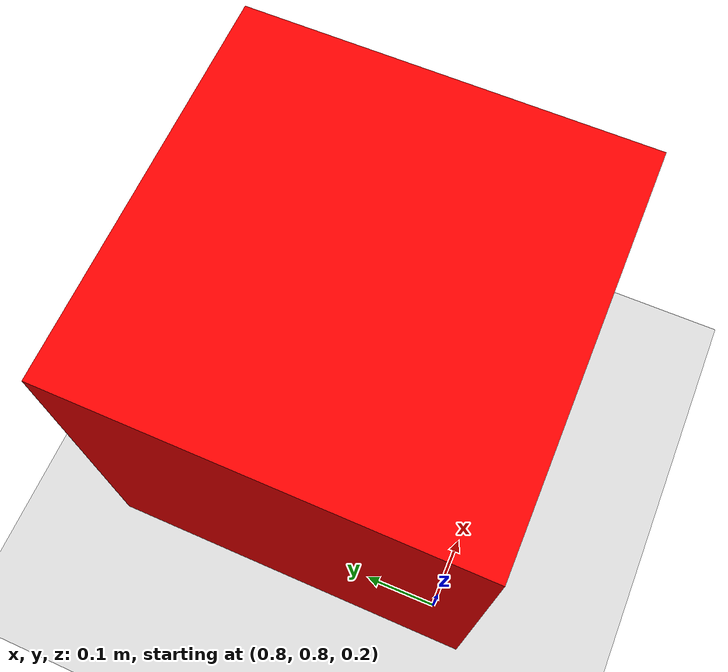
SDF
<?xml version="1.0" ?>
<sdf version="1.6">
  <world name="simple_world">
    <!-- Земля -->
    <model name="ground_plane">
      <static>true</static>
      <link name="ground_link">
        <collision name="collision">
          <geometry>
            <plane>
              <normal>0 0 1</normal>
              <size>100 100</size>
            </plane>
          </geometry>
          <surface>
            <friction>
              <ode>
                <mu>0.6</mu>
                <mu2>0.6</mu2>
              </ode>
            </friction>
          </surface>
        </collision>
        <visual name="visual">
          <geometry>
            <plane>
              <normal>0 0 1</normal>
              <size>100 100</size>
            </plane>
          </geometry>
          <material>
            <ambient>0.8 0.8 0.8 1</ambient>
            <diffuse>0.8 0.8 0.8 1</diffuse>
          </material>
        </visual>
      </link>
    </model>
    <!-- Кубик -->
    <model name="cube">
      <pose>1 1 0.5 0 0 0</pose>
      <link name="cube_link">
        <collision name="collision">
          <geometry>
            <box>
              <size>0.5 0.5 0.5</size>
            </box>
          </geometry>
        </collision>
        <visual name="visual">
          <geometry>
            <box>
              <size>0.5 0.5 0.5</size>
            </box>
          </geometry>
          <material>
            <ambient>1 0 0 1</ambient>
            <diffuse>1 0 0 1</diffuse>
          </material>
        </visual>
      </link>
    </model>
    <!-- Освещение -->
    <light type="directional" name="sun">
      <pose>0 0 10 0 0 0</pose>
      <diffuse>0.8 0.8 0.8 1</diffuse>
      <specular>0.2 0.2 0.2 1</specular>
      <direction>0 0 -1</direction>
    </light>
  </world>
</sdf>
